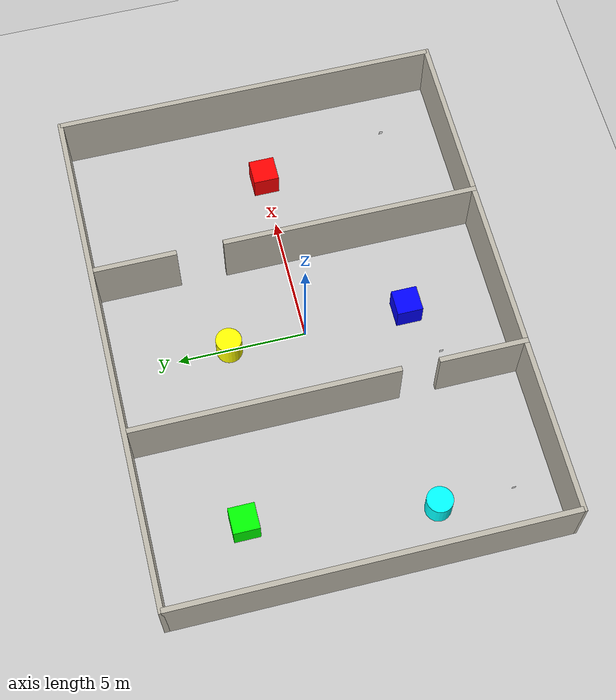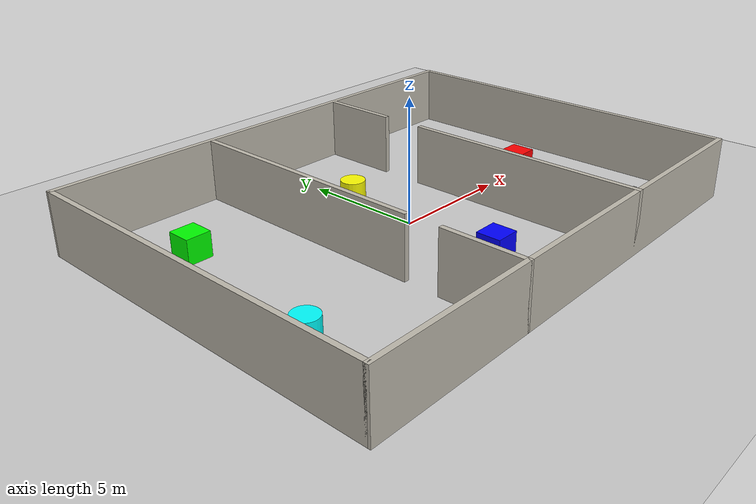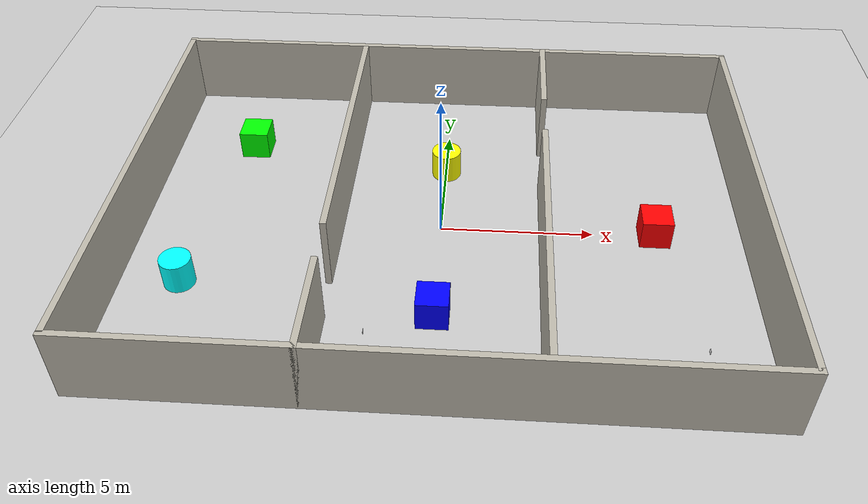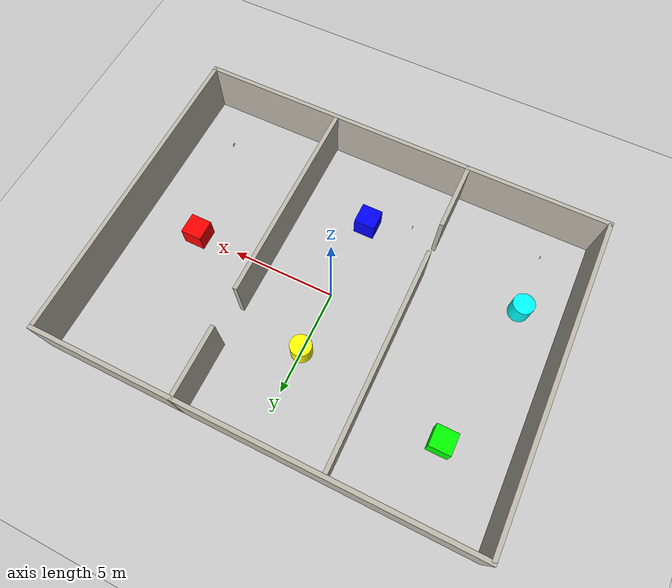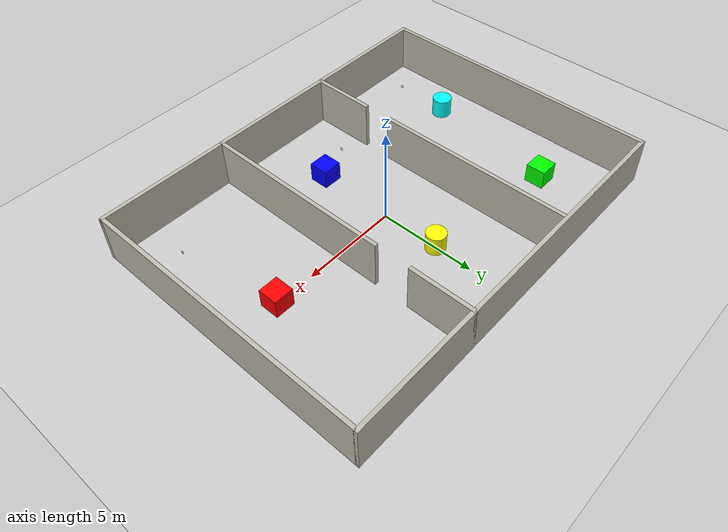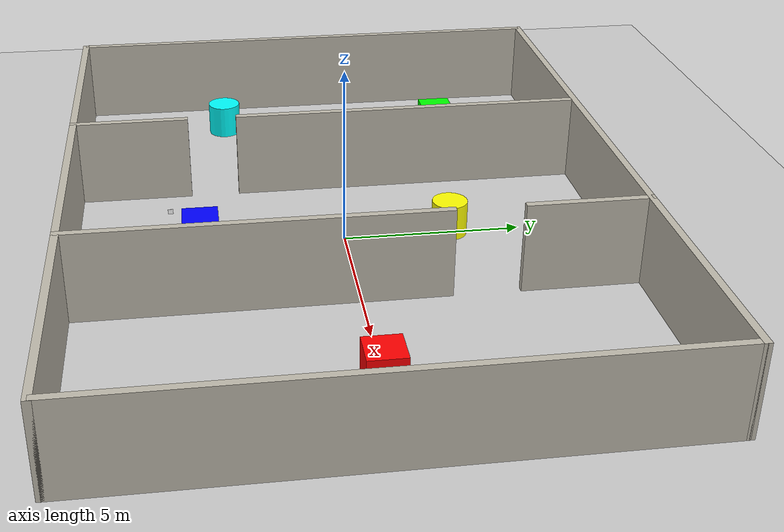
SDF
<sdf version="1.8">
 <world name="default">
  <physics name="1ms" type="bullet-featherstone">
   <max_step_size>0.001</max_step_size>
   <real_time_factor>1.0</real_time_factor>
  </physics>
  <plugin filename="gz-sim-physics-system" name="gz::sim::systems::Physics"/>
  <plugin filename="gz-sim-sensors-system" name="gz::sim::systems::Sensors">
   <render_engine>ogre2</render_engine>
  </plugin>
  <plugin filename="gz-sim-user-commands-system" name="gz::sim::systems::UserCommands"/>
  <plugin filename="gz-sim-scene-broadcaster-system" name="gz::sim::systems::SceneBroadcaster"/>
  <light type="directional" name="sun">
   <cast_shadows>false</cast_shadows>
   <pose>0 0 10 0 0 0</pose>
   <diffuse>0.8 0.8 0.8 1</diffuse>
   <specular>0.2 0.2 0.2 1</specular>
   <attenuation>
    <range>1000</range>
    <constant>0.9</constant>
    <linear>0.01</linear>
    <quadratic>0.001</quadratic>
   </attenuation>
   <direction>-0.5 0.1 -0.9</direction>
  </light>
  <model name="ground_plane">
   <static>true</static>
   <link name="link">
    <collision name="collision">
     <geometry><plane><normal>0 0 1</normal><size>100 100</size></plane></geometry>
    </collision>
    <visual name="visual">
     <geometry><plane><normal>0 0 1</normal><size>100 100</size></plane></geometry>
     <material>
      <ambient>0.8 0.8 0.8 1</ambient>
      <diffuse>0.8 0.8 0.8 1</diffuse>
      <specular>0.8 0.8 0.8 1</specular>
     </material>
    </visual>
   </link>
  </model>
  <model name="box1">
   <pose>7 0 0.5 0 0 0</pose>
   <link name="box_link">
    <inertial>
     <inertia><ixx>1</ixx><ixy>0</ixy><ixz>0</ixz><iyy>1</iyy><iyz>0</iyz><izz>1</izz></inertia>
     <mass>1.0</mass>
    </inertial>
    <collision name="box_collision"><geometry><box><size>1 1 1</size></box></geometry></collision>
    <visual name="box_visual">
     <geometry><box><size>1 1 1</size></box></geometry>
     <material><ambient>1 0 0 1</ambient><diffuse>1 0 0 1</diffuse><specular>1 0 0 1</specular></material>
    </visual>
   </link>
   <static>true</static>
  </model>
  <model name="aruco_marker_0">
   <static>true</static>
   <pose>8 -5.15 0.35 0 0 0</pose>
   <link name="link">
    <visual name="visual">
     <geometry><box><size>0.005 0.15 0.15</size></box></geometry>
     <material>
      <ambient>1 1 1 1</ambient>
      <diffuse>1 1 1 1</diffuse>
      <specular>0.1 0.1 0.1 1</specular>
      <pbr>
       <metal>
        <albedo_map>textures/marker_0.png</albedo_map>
        <metalness>0.0</metalness>
        <roughness>1.0</roughness>
       </metal>
      </pbr>
     </material>
    </visual>
   </link>
  </model>
  <model name="box2">
   <pose>-7 4 0.5 0 0 0</pose>
   <link name="box_link">
    <inertial>
     <inertia><ixx>1</ixx><ixy>0</ixy><ixz>0</ixz><iyy>1</iyy><iyz>0</iyz><izz>1</izz></inertia>
     <mass>1.0</mass>
    </inertial>
    <collision name="box_collision"><geometry><box><size>1 1 1</size></box></geometry></collision>
    <visual name="box_visual">
     <geometry><box><size>1 1 1</size></box></geometry>
     <material><ambient>0 1 0 1</ambient><diffuse>0 1 0 1</diffuse><specular>0 1 0 1</specular></material>
    </visual>
   </link>
   <static>true</static>
  </model>
  <model name="box3">
   <pose>0 -4 0.5 0 0 0</pose>
   <link name="box_link">
    <inertial>
     <inertia><ixx>1</ixx><ixy>0</ixy><ixz>0</ixz><iyy>1</iyy><iyz>0</iyz><izz>1</izz></inertia>
     <mass>1.0</mass>
    </inertial>
    <collision name="box_collision"><geometry><box><size>1 1 1</size></box></geometry></collision>
    <visual name="box_visual">
     <geometry><box><size>1 1 1</size></box></geometry>
     <material><ambient>0 0 1 1</ambient><diffuse>0 0 1 1</diffuse><specular>0 0 1 1</specular></material>
    </visual>
   </link>
   <static>true</static>
  </model>
  <model name="cylinder1">
   <pose>0 3 0.5 0 0 0</pose>
   <link name="cylinder_link">
    <inertial>
     <inertia><ixx>0.1458</ixx><ixy>0</ixy><ixz>0</ixz><iyy>0.1458</iyy><iyz>0</iyz><izz>0.125</izz></inertia>
     <mass>1.0</mass>
    </inertial>
    <collision name="cylinder_collision">
     <geometry><cylinder><radius>0.5</radius><length>1.0</length></cylinder></geometry>
    </collision>
    <visual name="cylinder_visual">
     <geometry><cylinder><radius>0.5</radius><length>1.0</length></cylinder></geometry>
     <material><ambient>1 1 0 1</ambient><diffuse>1 1 0 1</diffuse><specular>1 1 0 1</specular></material>
    </visual>
   </link>
   <static>true</static>
  </model>
  <model name="cylinder2">
   <pose>-8 -3 0.5 0 0 0</pose>
   <link name="cylinder_link">
    <inertial>
     <inertia><ixx>0.1458</ixx><ixy>0</ixy><ixz>0</ixz><iyy>0.1458</iyy><iyz>0</iyz><izz>0.125</izz></inertia>
     <mass>1.0</mass>
    </inertial>
    <collision name="cylinder_collision">
     <geometry><cylinder><radius>0.5</radius><length>1.0</length></cylinder></geometry>
    </collision>
    <visual name="cylinder_visual">
     <geometry><cylinder><radius>0.5</radius><length>1.0</length></cylinder></geometry>
     <material><ambient>0 1 1 1</ambient><diffuse>0 1 1 1</diffuse><specular>0 1 1 1</specular></material>
    </visual>
   </link>
   <static>true</static>
  </model>
  <model name="wall_north">
   <static>true</static>
   <pose>0 7.5 1.25 0 0 0</pose>
   <link name="link">
    <collision name="collision"><geometry><box><size>20.2 0.2 2.5</size></box></geometry></collision>
    <visual name="visual">
     <geometry><box><size>20.2 0.2 2.5</size></box></geometry>
     <material>
      <ambient>0.75 0.73 0.68 1</ambient>
      <diffuse>0.75 0.73 0.68 1</diffuse>
      <specular>0.3 0.3 0.3 1</specular>
     </material>
    </visual>
   </link>
  </model>
  <model name="wall_south">
   <static>true</static>
   <pose>0 -7.5 1.25 0 0 0</pose>
   <link name="link">
    <collision name="collision"><geometry><box><size>20.2 0.2 2.5</size></box></geometry></collision>
    <visual name="visual">
     <geometry><box><size>20.2 0.2 2.5</size></box></geometry>
     <material>
      <ambient>0.75 0.73 0.68 1</ambient>
      <diffuse>0.75 0.73 0.68 1</diffuse>
      <specular>0.3 0.3 0.3 1</specular>
     </material>
    </visual>
   </link>
  </model>
  <model name="wall_east">
   <static>true</static>
   <pose>10 0 1.25 0 0 0</pose>
   <link name="link">
    <collision name="collision"><geometry><box><size>0.2 15 2.5</size></box></geometry></collision>
    <visual name="visual">
     <geometry><box><size>0.2 15 2.5</size></box></geometry>
     <material>
      <ambient>0.75 0.73 0.68 1</ambient>
      <diffuse>0.75 0.73 0.68 1</diffuse>
      <specular>0.3 0.3 0.3 1</specular>
     </material>
    </visual>
   </link>
  </model>
  <model name="wall_west">
   <static>true</static>
   <pose>-10 0 1.25 0 0 0</pose>
   <link name="link">
    <collision name="collision"><geometry><box><size>0.2 15 2.5</size></box></geometry></collision>
    <visual name="visual">
     <geometry><box><size>0.2 15 2.5</size></box></geometry>
     <material>
      <ambient>0.75 0.73 0.68 1</ambient>
      <diffuse>0.75 0.73 0.68 1</diffuse>
      <specular>0.3 0.3 0.3 1</specular>
     </material>
    </visual>
   </link>
  </model>
  <model name="divider1_north">
   <static>true</static>
   <pose>-3.333 2.31 1.25 0 0 0</pose>
   <link name="link">
    <collision name="collision"><geometry><box><size>0.2 10.2 2.5</size></box></geometry></collision>
    <visual name="visual">
     <geometry><box><size>0.2 10.2 2.5</size></box></geometry>
     <material>
      <ambient>0.75 0.73 0.68 1</ambient>
      <diffuse>0.75 0.73 0.68 1</diffuse>
      <specular>0.3 0.3 0.3 1</specular>
     </material>
    </visual>
   </link>
  </model>
  <model name="divider1_south">
   <static>true</static>
   <pose>-3.333 -5.9 1.25 0 0 0</pose>
   <link name="link">
    <collision name="collision"><geometry><box><size>0.2 3.4 2.5</size></box></geometry></collision>
    <visual name="visual">
     <geometry><box><size>0.2 3.4 2.5</size></box></geometry>
     <material>
      <ambient>0.75 0.73 0.68 1</ambient>
      <diffuse>0.75 0.73 0.68 1</diffuse>
      <specular>0.3 0.3 0.3 1</specular>
     </material>
    </visual>
   </link>
  </model>
  <model name="divider2_north">
   <static>true</static>
   <pose>3.333 5.9 1.25 0 0 0</pose>
   <link name="link">
    <collision name="collision"><geometry><box><size>0.2 3.4 2.5</size></box></geometry></collision>
    <visual name="visual">
     <geometry><box><size>0.2 3.4 2.5</size></box></geometry>
     <material>
      <ambient>0.75 0.73 0.68 1</ambient>
      <diffuse>0.75 0.73 0.68 1</diffuse>
      <specular>0.3 0.3 0.3 1</specular>
     </material>
    </visual>
   </link>
  </model>
  <model name="divider2_south">
   <static>true</static>
   <pose>3.333 -2.6 1.25 0 0 0</pose>
   <link name="link">
    <collision name="collision"><geometry><box><size>0.2 10.0 2.5</size></box></geometry></collision>
    <visual name="visual">
     <geometry><box><size>0.2 10.0 2.5</size></box></geometry>
     <material>
      <ambient>0.75 0.73 0.68 1</ambient>
      <diffuse>0.75 0.73 0.68 1</diffuse>
      <specular>0.3 0.3 0.3 1</specular>
     </material>
    </visual>
   </link>
  </model>
  <model name="aruco_marker_1">
   <static>true</static>
   <pose>-8 -5.85 0.35 0 0 0</pose>
   <link name="link">
    <visual name="visual">
     <geometry><box><size>0.005 0.15 0.15</size></box></geometry>
     <material>
      <ambient>1 1 1 1</ambient>
      <diffuse>1 1 1 1</diffuse>
      <specular>0.1 0.1 0.1 1</specular>
      <pbr>
       <metal>
        <albedo_map>textures/marker_1.png</albedo_map>
        <metalness>0.0</metalness>
        <roughness>1.0</roughness>
       </metal>
      </pbr>
     </material>
    </visual>
   </link>
  </model>
  <model name="aruco_marker_2">
   <static>true</static>
   <pose>-2 -4.85 0.15 0 0 0</pose>
   <link name="link">
    <visual name="visual">
     <geometry><box><size>0.005 0.15 0.15</size></box></geometry>
     <material>
      <ambient>1 1 1 1</ambient>
      <diffuse>1 1 1 1</diffuse>
      <specular>0.1 0.1 0.1 1</specular>
      <pbr>
       <metal>
        <albedo_map>textures/marker_2.png</albedo_map>
        <metalness>0.0</metalness>
        <roughness>1.0</roughness>
       </metal>
      </pbr>
     </material>
    </visual>
   </link>
  </model>
 </world>
</sdf>
